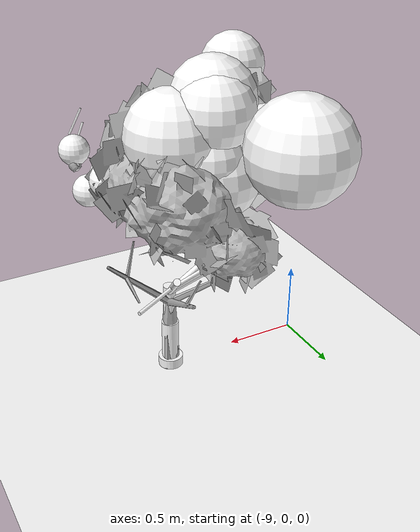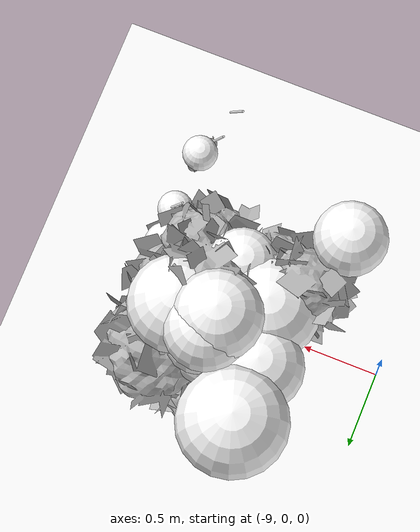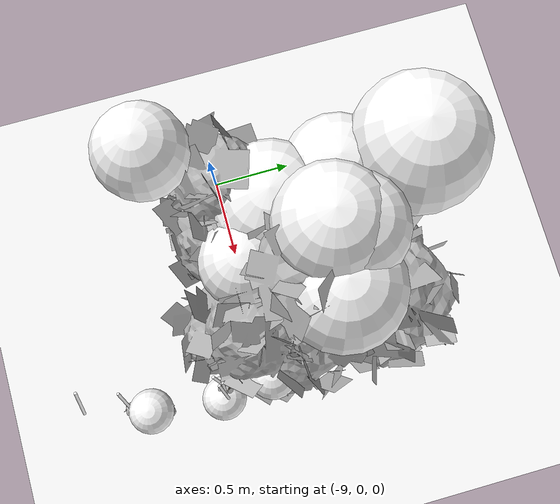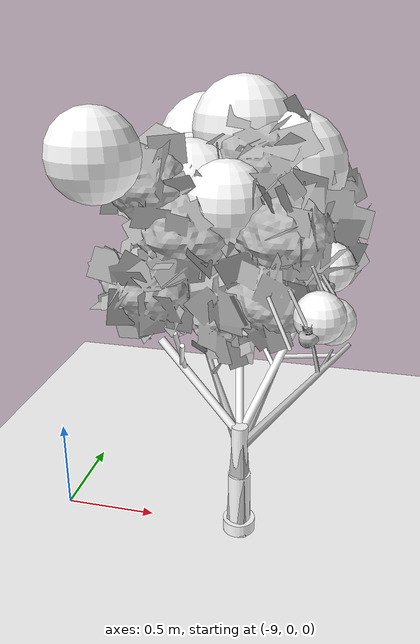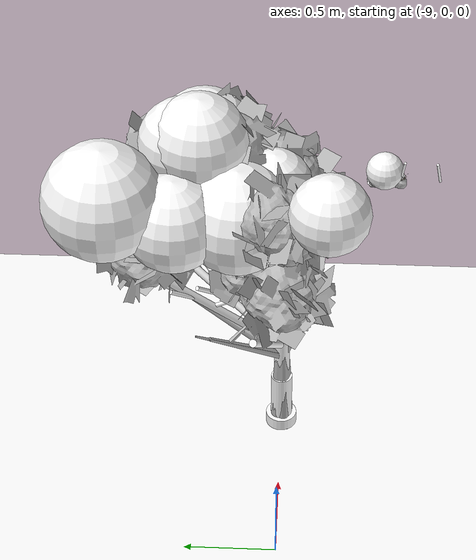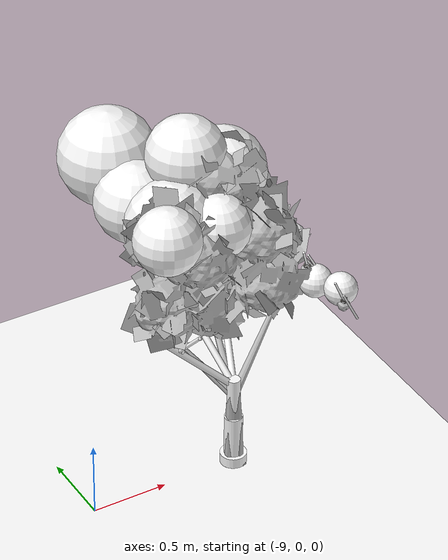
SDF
<sdf version="1.11">
 <world name="peach_orchard">
  <model name="ground">
   <static>true</static>
   <link name="link">
    <visual name="soil">
     <geometry><plane><normal>0 0 1</normal><size>32 22</size></plane></geometry>
     <material>
      <ambient>1 1 1 1</ambient>
      <diffuse>1 1 1 1</diffuse>
      <specular>0.1 0.1 0.1 1</specular>
      <pbr>
       <metal>
        <albedo_map>textures/soil_albedo.png</albedo_map>
        <normal_map type="tangent">textures/soil_normal.png</normal_map>
        <roughness>0.95</roughness>
        <metalness>0</metalness>
       </metal>
      </pbr>
     </material>
    </visual>
    <collision name="c_soil">
     <geometry><plane><normal>0 0 1</normal><size>32 22</size></plane></geometry>
    </collision>
   </link>
  </model>
  <model name="tree_r0_t3">
   <pose>-8 0 0 0 0 0</pose>
   <static>true</static>
   <link name="link">
    <visual name="tree_mesh">
     <pose>0 0 0 0 0 -0.247221</pose>
     <geometry>
      <mesh><uri>model://peach_sim/meshes/peach_tree_b.glb</uri><scale>0.967358 0.967358 0.967358</scale></mesh>
     </geometry>
    </visual>
    <visual name="trunk_0">
     <pose>0 0 0.178396 0 0 0</pose>
     <geometry><cylinder><radius>0.0597704</radius><length>0.356792</length></cylinder></geometry>
     <material>
      <ambient>1 1 1 1</ambient>
      <diffuse>1 1 1 1</diffuse>
      <specular>0.1 0.1 0.1 1</specular>
      <pbr>
       <metal>
        <albedo_map>textures/bark_albedo.png</albedo_map>
        <normal_map type="tangent">textures/bark_normal.png</normal_map>
        <roughness>0.9</roughness>
        <metalness>0</metalness>
       </metal>
      </pbr>
     </material>
    </visual>
    <collision name="c_trunk_0">
     <pose>0 0 0.178396 0 0 0</pose>
     <geometry><cylinder><radius>0.0597704</radius><length>0.356792</length></cylinder></geometry>
    </collision>
    <visual name="trunk_1">
     <pose>0 0 0.502752 0 0 0</pose>
     <geometry><cylinder><radius>0.0430347</radius><length>0.291921</length></cylinder></geometry>
     <material>
      <ambient>1 1 1 1</ambient>
      <diffuse>1 1 1 1</diffuse>
      <specular>0.1 0.1 0.1 1</specular>
      <pbr>
       <metal>
        <albedo_map>textures/bark_albedo.png</albedo_map>
        <normal_map type="tangent">textures/bark_normal.png</normal_map>
        <roughness>0.9</roughness>
        <metalness>0</metalness>
       </metal>
      </pbr>
     </material>
    </visual>
    <collision name="c_trunk_1">
     <pose>0 0 0.502752 0 0 0</pose>
     <geometry><cylinder><radius>0.0430347</radius><length>0.291921</length></cylinder></geometry>
    </collision>
    <visual name="root_flare">
     <pose>0 0 0.035 0 0 0</pose>
     <geometry><cylinder><radius>0.086667</radius><length>0.07</length></cylinder></geometry>
     <material>
      <ambient>1 1 1 1</ambient>
      <diffuse>1 1 1 1</diffuse>
      <specular>0.1 0.1 0.1 1</specular>
      <pbr>
       <metal>
        <albedo_map>textures/bark_albedo.png</albedo_map>
        <normal_map type="tangent">textures/bark_normal.png</normal_map>
        <roughness>0.95</roughness>
        <metalness>0</metalness>
       </metal>
      </pbr>
     </material>
    </visual>
    <visual name="scaffold_0">
     <pose>-0.0714099 0.32601 0.895515 0 0.840746 1.78643</pose>
     <geometry><cylinder><radius>0.022</radius><length>0.895776</length></cylinder></geometry>
     <material>
      <ambient>1 1 1 1</ambient>
      <diffuse>1 1 1 1</diffuse>
      <specular>0.1 0.1 0.1 1</specular>
      <pbr>
       <metal>
        <albedo_map>textures/bark_albedo.png</albedo_map>
        <normal_map type="tangent">textures/bark_normal.png</normal_map>
        <roughness>0.9</roughness>
        <metalness>0</metalness>
       </metal>
      </pbr>
     </material>
    </visual>
    <collision name="c_scaffold_0">
     <pose>-0.0714099 0.32601 0.895515 0 0.840746 1.78643</pose>
     <geometry><cylinder><radius>0.022</radius><length>0.895776</length></cylinder></geometry>
    </collision>
    <visual name="branchlet_0_0">
     <pose>-0.074968 0.278028 0.985074 0 1.2294 -1.48607</pose>
     <geometry><cylinder><radius>0.012</radius><length>0.223457</length></cylinder></geometry>
     <material>
      <ambient>1 1 1 1</ambient>
      <diffuse>1 1 1 1</diffuse>
      <specular>0.1 0.1 0.1 1</specular>
      <pbr>
       <metal>
        <albedo_map>textures/bark_albedo.png</albedo_map>
        <normal_map type="tangent">textures/bark_normal.png</normal_map>
        <roughness>0.9</roughness>
        <metalness>0</metalness>
       </metal>
      </pbr>
     </material>
    </visual>
    <visual name="branchlet_0_1">
     <pose>-0.141953 0.527341 1.07199 0 0.959328 2.09249</pose>
     <geometry><cylinder><radius>0.012</radius><length>0.209406</length></cylinder></geometry>
     <material>
      <ambient>1 1 1 1</ambient>
      <diffuse>1 1 1 1</diffuse>
      <specular>0.1 0.1 0.1 1</specular>
      <pbr>
       <metal>
        <albedo_map>textures/bark_albedo.png</albedo_map>
        <normal_map type="tangent">textures/bark_normal.png</normal_map>
        <roughness>0.9</roughness>
        <metalness>0</metalness>
       </metal>
      </pbr>
     </material>
    </visual>
    <visual name="scaffold_1">
     <pose>0.126136 0.324107 0.850534 0 0.940531 1.19965</pose>
     <geometry><cylinder><radius>0.022</radius><length>0.860996</length></cylinder></geometry>
     <material>
      <ambient>1 1 1 1</ambient>
      <diffuse>1 1 1 1</diffuse>
      <specular>0.1 0.1 0.1 1</specular>
      <pbr>
       <metal>
        <albedo_map>textures/bark_albedo.png</albedo_map>
        <normal_map type="tangent">textures/bark_normal.png</normal_map>
        <roughness>0.9</roughness>
        <metalness>0</metalness>
       </metal>
      </pbr>
     </material>
    </visual>
    <collision name="c_scaffold_1">
     <pose>0.126136 0.324107 0.850534 0 0.940531 1.19965</pose>
     <geometry><cylinder><radius>0.022</radius><length>0.860996</length></cylinder></geometry>
    </collision>
    <visual name="branchlet_1_0">
     <pose>0.0463369 0.392022 0.934786 0 0.868137 2.34231</pose>
     <geometry><cylinder><radius>0.012</radius><length>0.285194</length></cylinder></geometry>
     <material>
      <ambient>1 1 1 1</ambient>
      <diffuse>1 1 1 1</diffuse>
      <specular>0.1 0.1 0.1 1</specular>
      <pbr>
       <metal>
        <albedo_map>textures/bark_albedo.png</albedo_map>
        <normal_map type="tangent">textures/bark_normal.png</normal_map>
        <roughness>0.9</roughness>
        <metalness>0</metalness>
       </metal>
      </pbr>
     </material>
    </visual>
    <visual name="branchlet_1_1">
     <pose>0.291193 0.439442 0.873302 0 1.6542 0.438401</pose>
     <geometry><cylinder><radius>0.012</radius><length>0.32582</length></cylinder></geometry>
     <material>
      <ambient>1 1 1 1</ambient>
      <diffuse>1 1 1 1</diffuse>
      <specular>0.1 0.1 0.1 1</specular>
      <pbr>
       <metal>
        <albedo_map>textures/bark_albedo.png</albedo_map>
        <normal_map type="tangent">textures/bark_normal.png</normal_map>
        <roughness>0.9</roughness>
        <metalness>0</metalness>
       </metal>
      </pbr>
     </material>
    </visual>
    <visual name="scaffold_2">
     <pose>-0.228838 0.0738071 0.812252 0 0.840203 2.8296</pose>
     <geometry><cylinder><radius>0.022</radius><length>0.645684</length></cylinder></geometry>
     <material>
      <ambient>1 1 1 1</ambient>
      <diffuse>1 1 1 1</diffuse>
      <specular>0.1 0.1 0.1 1</specular>
      <pbr>
       <metal>
        <albedo_map>textures/bark_albedo.png</albedo_map>
        <normal_map type="tangent">textures/bark_normal.png</normal_map>
        <roughness>0.9</roughness>
        <metalness>0</metalness>
       </metal>
      </pbr>
     </material>
    </visual>
    <collision name="c_scaffold_2">
     <pose>-0.228838 0.0738071 0.812252 0 0.840203 2.8296</pose>
     <geometry><cylinder><radius>0.022</radius><length>0.645684</length></cylinder></geometry>
    </collision>
    <visual name="branchlet_2_0">
     <pose>-0.308755 0.0238374 1.00972 0 0.745564 -1.25664</pose>
     <geometry><cylinder><radius>0.012</radius><length>0.262289</length></cylinder></geometry>
     <material>
      <ambient>1 1 1 1</ambient>
      <diffuse>1 1 1 1</diffuse>
      <specular>0.1 0.1 0.1 1</specular>
      <pbr>
       <metal>
        <albedo_map>textures/bark_albedo.png</albedo_map>
        <normal_map type="tangent">textures/bark_normal.png</normal_map>
        <roughness>0.9</roughness>
        <metalness>0</metalness>
       </metal>
      </pbr>
     </material>
    </visual>
    <visual name="branchlet_2_1">
     <pose>-0.325364 0.0508039 1.0158 0 0.396969 -1.79275</pose>
     <geometry><cylinder><radius>0.012</radius><length>0.267607</length></cylinder></geometry>
     <material>
      <ambient>1 1 1 1</ambient>
      <diffuse>1 1 1 1</diffuse>
      <specular>0.1 0.1 0.1 1</specular>
      <pbr>
       <metal>
        <albedo_map>textures/bark_albedo.png</albedo_map>
        <normal_map type="tangent">textures/bark_normal.png</normal_map>
        <roughness>0.9</roughness>
        <metalness>0</metalness>
       </metal>
      </pbr>
     </material>
    </visual>
    <visual name="canopy_0">
     <pose>-0.0521394 0.522482 2.05454 0 0 0</pose>
     <geometry><sphere><radius>0.239996</radius></sphere></geometry>
     <material>
      <ambient>1 1 1 1</ambient>
      <diffuse>1 1 1 1</diffuse>
      <specular>0.1 0.1 0.1 1</specular>
      <pbr>
       <metal>
        <albedo_map>textures/leaf_albedo.png</albedo_map>
        <normal_map type="tangent">textures/leaf_normal.png</normal_map>
        <roughness>0.85</roughness>
        <metalness>0</metalness>
       </metal>
      </pbr>
     </material>
    </visual>
    <collision name="c_canopy_0">
     <pose>-0.0521394 0.522482 2.05454 0 0 0</pose>
     <geometry><sphere><radius>0.239996</radius></sphere></geometry>
    </collision>
    <visual name="canopy_1">
     <pose>-0.0854277 0.439385 2.09085 0 0 0</pose>
     <geometry><sphere><radius>0.25731</radius></sphere></geometry>
     <material>
      <ambient>1 1 1 1</ambient>
      <diffuse>1 1 1 1</diffuse>
      <specular>0.1 0.1 0.1 1</specular>
      <pbr>
       <metal>
        <albedo_map>textures/leaf_albedo.png</albedo_map>
        <normal_map type="tangent">textures/leaf_normal.png</normal_map>
        <roughness>0.85</roughness>
        <metalness>0</metalness>
       </metal>
      </pbr>
     </material>
    </visual>
    <collision name="c_canopy_1">
     <pose>-0.0854277 0.439385 2.09085 0 0 0</pose>
     <geometry><sphere><radius>0.25731</radius></sphere></geometry>
    </collision>
    <visual name="canopy_2">
     <pose>-0.0812846 0.0511487 1.80189 0 0 0</pose>
     <geometry><sphere><radius>0.204161</radius></sphere></geometry>
     <material>
      <ambient>1 1 1 1</ambient>
      <diffuse>1 1 1 1</diffuse>
      <specular>0.1 0.1 0.1 1</specular>
      <pbr>
       <metal>
        <albedo_map>textures/leaf_albedo.png</albedo_map>
        <normal_map type="tangent">textures/leaf_normal.png</normal_map>
        <roughness>0.85</roughness>
        <metalness>0</metalness>
       </metal>
      </pbr>
     </material>
    </visual>
    <collision name="c_canopy_2">
     <pose>-0.0812846 0.0511487 1.80189 0 0 0</pose>
     <geometry><sphere><radius>0.204161</radius></sphere></geometry>
    </collision>
    <visual name="canopy_3">
     <pose>-0.372587 0.5628 1.7805 0 0 0</pose>
     <geometry><sphere><radius>0.263478</radius></sphere></geometry>
     <material>
      <ambient>1 1 1 1</ambient>
      <diffuse>1 1 1 1</diffuse>
      <specular>0.1 0.1 0.1 1</specular>
      <pbr>
       <metal>
        <albedo_map>textures/leaf_albedo.png</albedo_map>
        <normal_map type="tangent">textures/leaf_normal.png</normal_map>
        <roughness>0.85</roughness>
        <metalness>0</metalness>
       </metal>
      </pbr>
     </material>
    </visual>
    <visual name="canopy_4">
     <pose>-0.0149876 0.51601 1.77718 0 0 0</pose>
     <geometry><sphere><radius>0.222889</radius></sphere></geometry>
     <material>
      <ambient>1 1 1 1</ambient>
      <diffuse>1 1 1 1</diffuse>
      <specular>0.1 0.1 0.1 1</specular>
      <pbr>
       <metal>
        <albedo_map>textures/leaf_albedo.png</albedo_map>
        <normal_map type="tangent">textures/leaf_normal.png</normal_map>
        <roughness>0.85</roughness>
        <metalness>0</metalness>
       </metal>
      </pbr>
     </material>
    </visual>
    <visual name="canopy_5">
     <pose>-0.320343 0.123571 1.69414 0 0 0</pose>
     <geometry><sphere><radius>0.19506</radius></sphere></geometry>
     <material>
      <ambient>1 1 1 1</ambient>
      <diffuse>1 1 1 1</diffuse>
      <specular>0.1 0.1 0.1 1</specular>
      <pbr>
       <metal>
        <albedo_map>textures/leaf_albedo.png</albedo_map>
        <normal_map type="tangent">textures/leaf_normal.png</normal_map>
        <roughness>0.85</roughness>
        <metalness>0</metalness>
       </metal>
      </pbr>
     </material>
    </visual>
    <visual name="canopy_6">
     <pose>-0.10246 0.298715 1.62442 0 0 0</pose>
     <geometry><sphere><radius>0.18297</radius></sphere></geometry>
     <material>
      <ambient>1 1 1 1</ambient>
      <diffuse>1 1 1 1</diffuse>
      <specular>0.1 0.1 0.1 1</specular>
      <pbr>
       <metal>
        <albedo_map>textures/leaf_albedo.png</albedo_map>
        <normal_map type="tangent">textures/leaf_normal.png</normal_map>
        <roughness>0.85</roughness>
        <metalness>0</metalness>
       </metal>
      </pbr>
     </material>
    </visual>
    <visual name="canopy_7">
     <pose>0.161933 0.425727 1.91274 0 0 0</pose>
     <geometry><sphere><radius>0.280932</radius></sphere></geometry>
     <material>
      <ambient>1 1 1 1</ambient>
      <diffuse>1 1 1 1</diffuse>
      <specular>0.1 0.1 0.1 1</specular>
      <pbr>
       <metal>
        <albedo_map>textures/leaf_albedo.png</albedo_map>
        <normal_map type="tangent">textures/leaf_normal.png</normal_map>
        <roughness>0.85</roughness>
        <metalness>0</metalness>
       </metal>
      </pbr>
     </material>
    </visual>
    <visual name="canopy_8">
     <pose>-0.303597 0.234735 1.76609 0 0 0</pose>
     <geometry><sphere><radius>0.299813</radius></sphere></geometry>
     <material>
      <ambient>1 1 1 1</ambient>
      <diffuse>1 1 1 1</diffuse>
      <specular>0.1 0.1 0.1 1</specular>
      <pbr>
       <metal>
        <albedo_map>textures/leaf_albedo.png</albedo_map>
        <normal_map type="tangent">textures/leaf_normal.png</normal_map>
        <roughness>0.85</roughness>
        <metalness>0</metalness>
       </metal>
      </pbr>
     </material>
    </visual>
    <visual name="canopy_9">
     <pose>-0.365212 0.923447 1.90479 0 0 0</pose>
     <geometry><sphere><radius>0.318709</radius></sphere></geometry>
     <material>
      <ambient>1 1 1 1</ambient>
      <diffuse>1 1 1 1</diffuse>
      <specular>0.1 0.1 0.1 1</specular>
      <pbr>
       <metal>
        <albedo_map>textures/leaf_albedo.png</albedo_map>
        <normal_map type="tangent">textures/leaf_normal.png</normal_map>
        <roughness>0.85</roughness>
        <metalness>0</metalness>
       </metal>
      </pbr>
     </material>
    </visual>
    <visual name="canopy_10">
     <pose>-0.0771612 0.481471 1.65753 0 0 0</pose>
     <geometry><sphere><radius>0.28199</radius></sphere></geometry>
     <material>
      <ambient>1 1 1 1</ambient>
      <diffuse>1 1 1 1</diffuse>
      <specular>0.1 0.1 0.1 1</specular>
      <pbr>
       <metal>
        <albedo_map>textures/leaf_albedo.png</albedo_map>
        <normal_map type="tangent">textures/leaf_normal.png</normal_map>
        <roughness>0.85</roughness>
        <metalness>0</metalness>
       </metal>
      </pbr>
     </material>
    </visual>
    <visual name="canopy_11">
     <pose>-0.601643 -0.239199 2.04859 0 0 0</pose>
     <geometry><sphere><radius>0.210465</radius></sphere></geometry>
     <material>
      <ambient>1 1 1 1</ambient>
      <diffuse>1 1 1 1</diffuse>
      <specular>0.1 0.1 0.1 1</specular>
      <pbr>
       <metal>
        <albedo_map>textures/leaf_albedo.png</albedo_map>
        <normal_map type="tangent">textures/leaf_normal.png</normal_map>
        <roughness>0.85</roughness>
        <metalness>0</metalness>
       </metal>
      </pbr>
     </material>
    </visual>
    <visual name="foliage_0">
     <pose>0.44745 -0.213261 1.37362 0 0 0</pose>
     <geometry><sphere><radius>0.105759</radius></sphere></geometry>
     <material>
      <ambient>1 1 1 1</ambient>
      <diffuse>1 1 1 1</diffuse>
      <specular>0.1 0.1 0.1 1</specular>
      <pbr>
       <metal>
        <albedo_map>textures/leaf_albedo.png</albedo_map>
        <normal_map type="tangent">textures/leaf_normal.png</normal_map>
        <roughness>0.85</roughness>
        <metalness>0</metalness>
       </metal>
      </pbr>
     </material>
    </visual>
    <visual name="foliage_4">
     <pose>0.419705 -0.538777 1.5248 0 0 0</pose>
     <geometry><sphere><radius>0.103953</radius></sphere></geometry>
     <material>
      <ambient>1 1 1 1</ambient>
      <diffuse>1 1 1 1</diffuse>
      <specular>0.1 0.1 0.1 1</specular>
      <pbr>
       <metal>
        <albedo_map>textures/leaf_albedo.png</albedo_map>
        <normal_map type="tangent">textures/leaf_normal.png</normal_map>
        <roughness>0.85</roughness>
        <metalness>0</metalness>
       </metal>
      </pbr>
     </material>
    </visual>
    <visual name="foliage_8">
     <pose>0.405917 0.0375678 1.5341 0 0 0</pose>
     <geometry><sphere><radius>0.119137</radius></sphere></geometry>
     <material>
      <ambient>1 1 1 1</ambient>
      <diffuse>1 1 1 1</diffuse>
      <specular>0.1 0.1 0.1 1</specular>
      <pbr>
       <metal>
        <albedo_map>textures/leaf_albedo.png</albedo_map>
        <normal_map type="tangent">textures/leaf_normal.png</normal_map>
        <roughness>0.85</roughness>
        <metalness>0</metalness>
       </metal>
      </pbr>
     </material>
    </visual>
    <visual name="twig_0">
     <pose>0.439008 -0.193386 1.50181 0 0.549773 -2.8413</pose>
     <geometry><cylinder><radius>0.007</radius><length>0.180828</length></cylinder></geometry>
     <material>
      <ambient>1 1 1 1</ambient>
      <diffuse>1 1 1 1</diffuse>
      <specular>0.1 0.1 0.1 1</specular>
      <pbr>
       <metal>
        <albedo_map>textures/bark_albedo.png</albedo_map>
        <normal_map type="tangent">textures/bark_normal.png</normal_map>
        <roughness>0.9</roughness>
        <metalness>0</metalness>
       </metal>
      </pbr>
     </material>
    </visual>
    <visual name="twig_1">
     <pose>0.437007 -0.194741 1.47414 0 0.617922 3.07378</pose>
     <geometry><cylinder><radius>0.007</radius><length>0.180931</length></cylinder></geometry>
     <material>
      <ambient>1 1 1 1</ambient>
      <diffuse>1 1 1 1</diffuse>
      <specular>0.1 0.1 0.1 1</specular>
      <pbr>
       <metal>
        <albedo_map>textures/bark_albedo.png</albedo_map>
        <normal_map type="tangent">textures/bark_normal.png</normal_map>
        <roughness>0.9</roughness>
        <metalness>0</metalness>
       </metal>
      </pbr>
     </material>
    </visual>
    <visual name="twig_2">
     <pose>0.458465 -0.197293 1.43084 0 0.667459 2.86301</pose>
     <geometry><cylinder><radius>0.007</radius><length>0.133224</length></cylinder></geometry>
     <material>
      <ambient>1 1 1 1</ambient>
      <diffuse>1 1 1 1</diffuse>
      <specular>0.1 0.1 0.1 1</specular>
      <pbr>
       <metal>
        <albedo_map>textures/bark_albedo.png</albedo_map>
        <normal_map type="tangent">textures/bark_normal.png</normal_map>
        <roughness>0.9</roughness>
        <metalness>0</metalness>
       </metal>
      </pbr>
     </material>
    </visual>
    <visual name="twig_3">
     <pose>0.434107 -0.51824 1.52991 0 0.366935 -2.61122</pose>
     <geometry><cylinder><radius>0.007</radius><length>0.128357</length></cylinder></geometry>
     <material>
      <ambient>1 1 1 1</ambient>
      <diffuse>1 1 1 1</diffuse>
      <specular>0.1 0.1 0.1 1</specular>
      <pbr>
       <metal>
        <albedo_map>textures/bark_albedo.png</albedo_map>
        <normal_map type="tangent">textures/bark_normal.png</normal_map>
        <roughness>0.9</roughness>
        <metalness>0</metalness>
       </metal>
      </pbr>
     </material>
    </visual>
    <visual name="twig_4">
     <pose>0.348889 -0.634016 1.58656 0 0.447157 -2.96535</pose>
     <geometry><cylinder><radius>0.007</radius><length>0.176377</length></cylinder></geometry>
     <material>
      <ambient>1 1 1 1</ambient>
      <diffuse>1 1 1 1</diffuse>
      <specular>0.1 0.1 0.1 1</specular>
      <pbr>
       <metal>
        <albedo_map>textures/bark_albedo.png</albedo_map>
        <normal_map type="tangent">textures/bark_normal.png</normal_map>
        <roughness>0.9</roughness>
        <metalness>0</metalness>
       </metal>
      </pbr>
     </material>
    </visual>
    <visual name="twig_5">
     <pose>0.303764 -0.825683 1.61045 0 0.461687 2.85756</pose>
     <geometry><cylinder><radius>0.007</radius><length>0.202192</length></cylinder></geometry>
     <material>
      <ambient>1 1 1 1</ambient>
      <diffuse>1 1 1 1</diffuse>
      <specular>0.1 0.1 0.1 1</specular>
      <pbr>
       <metal>
        <albedo_map>textures/bark_albedo.png</albedo_map>
        <normal_map type="tangent">textures/bark_normal.png</normal_map>
        <roughness>0.9</roughness>
        <metalness>0</metalness>
       </metal>
      </pbr>
     </material>
    </visual>
    <visual name="twig_6">
     <pose>0.377038 -0.203165 1.55248 0 0.429266 -2.53192</pose>
     <geometry><cylinder><radius>0.007</radius><length>0.147432</length></cylinder></geometry>
     <material>
      <ambient>1 1 1 1</ambient>
      <diffuse>1 1 1 1</diffuse>
      <specular>0.1 0.1 0.1 1</specular>
      <pbr>
       <metal>
        <albedo_map>textures/bark_albedo.png</albedo_map>
        <normal_map type="tangent">textures/bark_normal.png</normal_map>
        <roughness>0.9</roughness>
        <metalness>0</metalness>
       </metal>
      </pbr>
     </material>
    </visual>
    <visual name="twig_7">
     <pose>0.376601 -0.0582306 1.57926 0 0.347275 2.56346</pose>
     <geometry><cylinder><radius>0.007</radius><length>0.154272</length></cylinder></geometry>
     <material>
      <ambient>1 1 1 1</ambient>
      <diffuse>1 1 1 1</diffuse>
      <specular>0.1 0.1 0.1 1</specular>
      <pbr>
       <metal>
        <albedo_map>textures/bark_albedo.png</albedo_map>
        <normal_map type="tangent">textures/bark_normal.png</normal_map>
        <roughness>0.9</roughness>
        <metalness>0</metalness>
       </metal>
      </pbr>
     </material>
    </visual>
    <visual name="twig_8">
     <pose>0.318591 0.0419632 1.56294 0 0.637538 3.11332</pose>
     <geometry><cylinder><radius>0.007</radius><length>0.161907</length></cylinder></geometry>
     <material>
      <ambient>1 1 1 1</ambient>
      <diffuse>1 1 1 1</diffuse>
      <specular>0.1 0.1 0.1 1</specular>
      <pbr>
       <metal>
        <albedo_map>textures/bark_albedo.png</albedo_map>
        <normal_map type="tangent">textures/bark_normal.png</normal_map>
        <roughness>0.9</roughness>
        <metalness>0</metalness>
       </metal>
      </pbr>
     </material>
    </visual>
    <visual name="twig_9">
     <pose>0.346366 0.210762 1.58309 0 0.638013 -2.87222</pose>
     <geometry><cylinder><radius>0.007</radius><length>0.162618</length></cylinder></geometry>
     <material>
      <ambient>1 1 1 1</ambient>
      <diffuse>1 1 1 1</diffuse>
      <specular>0.1 0.1 0.1 1</specular>
      <pbr>
       <metal>
        <albedo_map>textures/bark_albedo.png</albedo_map>
        <normal_map type="tangent">textures/bark_normal.png</normal_map>
        <roughness>0.9</roughness>
        <metalness>0</metalness>
       </metal>
      </pbr>
     </material>
    </visual>
    <visual name="twig_10">
     <pose>0.344335 0.474928 1.54053 0 0.651043 2.86531</pose>
     <geometry><cylinder><radius>0.007</radius><length>0.118282</length></cylinder></geometry>
     <material>
      <ambient>1 1 1 1</ambient>
      <diffuse>1 1 1 1</diffuse>
      <specular>0.1 0.1 0.1 1</specular>
      <pbr>
       <metal>
        <albedo_map>textures/bark_albedo.png</albedo_map>
        <normal_map type="tangent">textures/bark_normal.png</normal_map>
        <roughness>0.9</roughness>
        <metalness>0</metalness>
       </metal>
      </pbr>
     </material>
    </visual>
   </link>
  </model>
  <model name="peach_tree_r0_t3_02">
   <pose>-7.51628 -0.213388 1.31774 0 0.244275 0.31933</pose>
   <static>true</static>
   <link name="bag">
    <visual name="bag_mesh">
     <pose>0 0 0.0403235 0 0 0</pose>
     <geometry>
      <mesh><uri>model://peach_sim/meshes/bagged_peach.glb</uri><scale>0.95098 1.13878 0.916443</scale></mesh>
     </geometry>
    </visual>
    <visual name="body">
     <pose>0 0 0.0223235 0 0 0</pose>
     <geometry><ellipsoid><radii>0.0356617 0.0296082 0.0241094</radii></ellipsoid></geometry>
     <material>
      <ambient>1 1 1 1</ambient>
      <diffuse>1 1 1 1</diffuse>
      <specular>0.1 0.1 0.1 1</specular>
      <pbr>
       <metal>
        <albedo_map>textures/paper_bag_albedo.png</albedo_map>
        <normal_map type="tangent">textures/paper_bag_normal.png</normal_map>
        <roughness>0.72</roughness>
        <metalness>0</metalness>
       </metal>
      </pbr>
     </material>
    </visual>
    <visual name="bottom_fold">
     <pose>0 0 0.012 0 0 0.35</pose>
     <geometry><box><size>0.0552757 0.0340495 0.022</size></box></geometry>
     <material>
      <ambient>1 1 1 1</ambient>
      <diffuse>1 1 1 1</diffuse>
      <specular>0.1 0.1 0.1 1</specular>
      <pbr>
       <metal>
        <albedo_map>textures/paper_bag_albedo.png</albedo_map>
        <normal_map type="tangent">textures/paper_bag_normal.png</normal_map>
        <roughness>0.8</roughness>
        <metalness>0</metalness>
       </metal>
      </pbr>
     </material>
    </visual>
    <visual name="fruit">
     <pose>0 0 0.0203398 0 0 0</pose>
     <geometry><sphere><radius>0.0273934</radius></sphere></geometry>
     <material>
      <ambient>1 1 1 1</ambient>
      <diffuse>1 1 1 1</diffuse>
      <specular>0.1 0.1 0.1 1</specular>
      <pbr>
       <metal>
        <albedo_map>textures/fruit_skin_albedo.png</albedo_map>
        <normal_map type="tangent">textures/fruit_skin_normal.png</normal_map>
        <roughness>0.55</roughness>
        <metalness>0</metalness>
       </metal>
      </pbr>
     </material>
    </visual>
    <visual name="neck">
     <pose>0 0 0.053647 0 0 0</pose>
     <geometry><cylinder><radius>0.013</radius><length>0.018</length></cylinder></geometry>
     <material>
      <ambient>1 1 1 1</ambient>
      <diffuse>1 1 1 1</diffuse>
      <specular>0.1 0.1 0.1 1</specular>
      <pbr>
       <metal>
        <albedo_map>textures/paper_bag_albedo.png</albedo_map>
        <normal_map type="tangent">textures/paper_bag_normal.png</normal_map>
        <roughness>0.75</roughness>
        <metalness>0</metalness>
       </metal>
      </pbr>
     </material>
    </visual>
    <visual name="gather">
     <pose>0 0 0.034647 0 0 0</pose>
     <geometry><cylinder><radius>0.019</radius><length>0.02</length></cylinder></geometry>
     <material>
      <ambient>1 1 1 1</ambient>
      <diffuse>1 1 1 1</diffuse>
      <specular>0.1 0.1 0.1 1</specular>
      <pbr>
       <metal>
        <albedo_map>textures/paper_bag_albedo.png</albedo_map>
        <normal_map type="tangent">textures/paper_bag_normal.png</normal_map>
        <roughness>0.8</roughness>
        <metalness>0</metalness>
       </metal>
      </pbr>
     </material>
    </visual>
    <visual name="inner_paper">
     <pose>0 0 0.058647 0 0 0</pose>
     <geometry><cylinder><radius>0.01</radius><length>0.008</length></cylinder></geometry>
     <material>
      <ambient>0.180392 0.14902 0.133333 1</ambient>
      <diffuse>0.180392 0.14902 0.133333 1</diffuse>
      <specular>0.1 0.1 0.1 1</specular>
     </material>
    </visual>
    <visual name="wire_0">
     <pose>0 0 0.048647 0 0 0</pose>
     <geometry><cylinder><radius>0.0205</radius><length>0.0035</length></cylinder></geometry>
     <material>
      <ambient>0.25 0.25 0.25 1</ambient>
      <diffuse>0.25 0.25 0.25 1</diffuse>
      <specular>0.1 0.1 0.1 1</specular>
     </material>
    </visual>
    <visual name="wire_1">
     <pose>0 0 0.055647 0 0 0</pose>
     <geometry><cylinder><radius>0.0205</radius><length>0.0035</length></cylinder></geometry>
     <material>
      <ambient>0.25 0.25 0.25 1</ambient>
      <diffuse>0.25 0.25 0.25 1</diffuse>
      <specular>0.1 0.1 0.1 1</specular>
     </material>
    </visual>
    <visual name="wire_tail">
     <pose>0.01 0 0.056647 0 0.521618 0</pose>
     <geometry><cylinder><radius>0.0012</radius><length>0.026</length></cylinder></geometry>
     <material>
      <ambient>0.25 0.25 0.25 1</ambient>
      <diffuse>0.25 0.25 0.25 1</diffuse>
      <specular>0.1 0.1 0.1 1</specular>
     </material>
    </visual>
    <collision name="c_body">
     <pose>0 0 0.0223235 0 0 0</pose>
     <geometry><cylinder><radius>0.0356617</radius><length>0.044647</length></cylinder></geometry>
    </collision>
   </link>
  </model>
  <model name="peach_tree_r0_t3_03">
   <pose>-7.57305 -0.466838 1.41347 0 0.704683 -0.973794</pose>
   <static>true</static>
   <link name="bag">
    <visual name="bag_mesh">
     <pose>0 0 0.0461031 0 0 -0</pose>
     <geometry>
      <mesh><uri>model://peach_sim/meshes/bagged_peach.glb</uri><scale>0.941461 1.07677 1.0478</scale></mesh>
     </geometry>
    </visual>
    <visual name="body">
     <pose>0 0 0.0281031 0 0 0</pose>
     <geometry><ellipsoid><radii>0.0353048 0.0279961 0.0303513</radii></ellipsoid></geometry>
     <material>
      <ambient>1 1 1 1</ambient>
      <diffuse>1 1 1 1</diffuse>
      <specular>0.1 0.1 0.1 1</specular>
      <pbr>
       <metal>
        <albedo_map>textures/paper_bag_albedo.png</albedo_map>
        <normal_map type="tangent">textures/paper_bag_normal.png</normal_map>
        <roughness>0.72</roughness>
        <metalness>0</metalness>
       </metal>
      </pbr>
     </material>
    </visual>
    <visual name="bottom_fold">
     <pose>0 0 0.012 0 0 0.35</pose>
     <geometry><box><size>0.0547224 0.0321955 0.022</size></box></geometry>
     <material>
      <ambient>1 1 1 1</ambient>
      <diffuse>1 1 1 1</diffuse>
      <specular>0.1 0.1 0.1 1</specular>
      <pbr>
       <metal>
        <albedo_map>textures/paper_bag_albedo.png</albedo_map>
        <normal_map type="tangent">textures/paper_bag_normal.png</normal_map>
        <roughness>0.8</roughness>
        <metalness>0</metalness>
       </metal>
      </pbr>
     </material>
    </visual>
    <visual name="fruit">
     <pose>0 0 0.0172945 0 0 0</pose>
     <geometry><sphere><radius>0.0242263</radius></sphere></geometry>
     <material>
      <ambient>1 1 1 1</ambient>
      <diffuse>1 1 1 1</diffuse>
      <specular>0.1 0.1 0.1 1</specular>
      <pbr>
       <metal>
        <albedo_map>textures/fruit_skin_albedo.png</albedo_map>
        <normal_map type="tangent">textures/fruit_skin_normal.png</normal_map>
        <roughness>0.55</roughness>
        <metalness>0</metalness>
       </metal>
      </pbr>
     </material>
    </visual>
    <visual name="neck">
     <pose>0 0 0.0652061 0 0 0</pose>
     <geometry><cylinder><radius>0.013</radius><length>0.018</length></cylinder></geometry>
     <material>
      <ambient>1 1 1 1</ambient>
      <diffuse>1 1 1 1</diffuse>
      <specular>0.1 0.1 0.1 1</specular>
      <pbr>
       <metal>
        <albedo_map>textures/paper_bag_albedo.png</albedo_map>
        <normal_map type="tangent">textures/paper_bag_normal.png</normal_map>
        <roughness>0.75</roughness>
        <metalness>0</metalness>
       </metal>
      </pbr>
     </material>
    </visual>
    <visual name="gather">
     <pose>0 0 0.0462061 0 0 0</pose>
     <geometry><cylinder><radius>0.019</radius><length>0.02</length></cylinder></geometry>
     <material>
      <ambient>1 1 1 1</ambient>
      <diffuse>1 1 1 1</diffuse>
      <specular>0.1 0.1 0.1 1</specular>
      <pbr>
       <metal>
        <albedo_map>textures/paper_bag_albedo.png</albedo_map>
        <normal_map type="tangent">textures/paper_bag_normal.png</normal_map>
        <roughness>0.8</roughness>
        <metalness>0</metalness>
       </metal>
      </pbr>
     </material>
    </visual>
    <visual name="inner_paper">
     <pose>0 0 0.0702061 0 0 0</pose>
     <geometry><cylinder><radius>0.01</radius><length>0.008</length></cylinder></geometry>
     <material>
      <ambient>0.180392 0.14902 0.133333 1</ambient>
      <diffuse>0.180392 0.14902 0.133333 1</diffuse>
      <specular>0.1 0.1 0.1 1</specular>
     </material>
    </visual>
    <visual name="wire_0">
     <pose>0 0 0.0602061 0 0 0</pose>
     <geometry><cylinder><radius>0.0205</radius><length>0.0035</length></cylinder></geometry>
     <material>
      <ambient>0.25 0.25 0.25 1</ambient>
      <diffuse>0.25 0.25 0.25 1</diffuse>
      <specular>0.1 0.1 0.1 1</specular>
     </material>
    </visual>
    <visual name="wire_1">
     <pose>0 0 0.0672061 0 0 0</pose>
     <geometry><cylinder><radius>0.0205</radius><length>0.0035</length></cylinder></geometry>
     <material>
      <ambient>0.25 0.25 0.25 1</ambient>
      <diffuse>0.25 0.25 0.25 1</diffuse>
      <specular>0.1 0.1 0.1 1</specular>
     </material>
    </visual>
    <visual name="wire_tail">
     <pose>0.01 0 0.0682061 0 0.521618 0</pose>
     <geometry><cylinder><radius>0.0012</radius><length>0.026</length></cylinder></geometry>
     <material>
      <ambient>0.25 0.25 0.25 1</ambient>
      <diffuse>0.25 0.25 0.25 1</diffuse>
      <specular>0.1 0.1 0.1 1</specular>
     </material>
    </visual>
    <collision name="c_body">
     <pose>0 0 0.0281031 0 0 0</pose>
     <geometry><cylinder><radius>0.0353048</radius><length>0.0562061</length></cylinder></geometry>
    </collision>
   </link>
  </model>
  <model name="peach_tree_r0_t3_04">
   <pose>-7.60942 -0.610273 1.44671 0 0.283135 -1.8094</pose>
   <static>true</static>
   <link name="bag">
    <visual name="bag_mesh">
     <pose>0 0 0.0404191 0 0 -0</pose>
     <geometry>
      <mesh><uri>model://peach_sim/meshes/bagged_peach.glb</uri><scale>1.04429 1.13721 0.918617</scale></mesh>
     </geometry>
    </visual>
    <visual name="body">
     <pose>0 0 0.0224191 0 0 0</pose>
     <geometry><ellipsoid><radii>0.0391611 0.0295673 0.0242127</radii></ellipsoid></geometry>
     <material>
      <ambient>1 1 1 1</ambient>
      <diffuse>1 1 1 1</diffuse>
      <specular>0.1 0.1 0.1 1</specular>
      <pbr>
       <metal>
        <albedo_map>textures/paper_bag_albedo.png</albedo_map>
        <normal_map type="tangent">textures/paper_bag_normal.png</normal_map>
        <roughness>0.72</roughness>
        <metalness>0</metalness>
       </metal>
      </pbr>
     </material>
    </visual>
    <visual name="bottom_fold">
     <pose>0 0 0.012 0 0 0.35</pose>
     <geometry><box><size>0.0606996 0.0340024 0.022</size></box></geometry>
     <material>
      <ambient>1 1 1 1</ambient>
      <diffuse>1 1 1 1</diffuse>
      <specular>0.1 0.1 0.1 1</specular>
      <pbr>
       <metal>
        <albedo_map>textures/paper_bag_albedo.png</albedo_map>
        <normal_map type="tangent">textures/paper_bag_normal.png</normal_map>
        <roughness>0.8</roughness>
        <metalness>0</metalness>
       </metal>
      </pbr>
     </material>
    </visual>
    <visual name="fruit">
     <pose>0 0 0.0194825 0 0 0</pose>
     <geometry><sphere><radius>0.0265018</radius></sphere></geometry>
     <material>
      <ambient>1 1 1 1</ambient>
      <diffuse>1 1 1 1</diffuse>
      <specular>0.1 0.1 0.1 1</specular>
      <pbr>
       <metal>
        <albedo_map>textures/fruit_skin_albedo.png</albedo_map>
        <normal_map type="tangent">textures/fruit_skin_normal.png</normal_map>
        <roughness>0.55</roughness>
        <metalness>0</metalness>
       </metal>
      </pbr>
     </material>
    </visual>
    <visual name="neck">
     <pose>0 0 0.0538383 0 0 0</pose>
     <geometry><cylinder><radius>0.013</radius><length>0.018</length></cylinder></geometry>
     <material>
      <ambient>1 1 1 1</ambient>
      <diffuse>1 1 1 1</diffuse>
      <specular>0.1 0.1 0.1 1</specular>
      <pbr>
       <metal>
        <albedo_map>textures/paper_bag_albedo.png</albedo_map>
        <normal_map type="tangent">textures/paper_bag_normal.png</normal_map>
        <roughness>0.75</roughness>
        <metalness>0</metalness>
       </metal>
      </pbr>
     </material>
    </visual>
    <visual name="gather">
     <pose>0 0 0.0348383 0 0 0</pose>
     <geometry><cylinder><radius>0.019</radius><length>0.02</length></cylinder></geometry>
     <material>
      <ambient>1 1 1 1</ambient>
      <diffuse>1 1 1 1</diffuse>
      <specular>0.1 0.1 0.1 1</specular>
      <pbr>
       <metal>
        <albedo_map>textures/paper_bag_albedo.png</albedo_map>
        <normal_map type="tangent">textures/paper_bag_normal.png</normal_map>
        <roughness>0.8</roughness>
        <metalness>0</metalness>
       </metal>
      </pbr>
     </material>
    </visual>
    <visual name="inner_paper">
     <pose>0 0 0.0588383 0 0 0</pose>
     <geometry><cylinder><radius>0.01</radius><length>0.008</length></cylinder></geometry>
     <material>
      <ambient>0.180392 0.14902 0.133333 1</ambient>
      <diffuse>0.180392 0.14902 0.133333 1</diffuse>
      <specular>0.1 0.1 0.1 1</specular>
     </material>
    </visual>
    <visual name="wire_0">
     <pose>0 0 0.0488383 0 0 0</pose>
     <geometry><cylinder><radius>0.0205</radius><length>0.0035</length></cylinder></geometry>
     <material>
      <ambient>0.25 0.25 0.25 1</ambient>
      <diffuse>0.25 0.25 0.25 1</diffuse>
      <specular>0.1 0.1 0.1 1</specular>
     </material>
    </visual>
    <visual name="wire_1">
     <pose>0 0 0.0558383 0 0 0</pose>
     <geometry><cylinder><radius>0.0205</radius><length>0.0035</length></cylinder></geometry>
     <material>
      <ambient>0.25 0.25 0.25 1</ambient>
      <diffuse>0.25 0.25 0.25 1</diffuse>
      <specular>0.1 0.1 0.1 1</specular>
     </material>
    </visual>
    <visual name="wire_tail">
     <pose>0.01 0 0.0568383 0 0.521618 0</pose>
     <geometry><cylinder><radius>0.0012</radius><length>0.026</length></cylinder></geometry>
     <material>
      <ambient>0.25 0.25 0.25 1</ambient>
      <diffuse>0.25 0.25 0.25 1</diffuse>
      <specular>0.1 0.1 0.1 1</specular>
     </material>
    </visual>
    <collision name="c_body">
     <pose>0 0 0.0224191 0 0 0</pose>
     <geometry><cylinder><radius>0.0391611</radius><length>0.0448383</length></cylinder></geometry>
    </collision>
   </link>
  </model>
  <model name="peach_tree_r0_t3_06">
   <pose>-7.59794 -0.185741 1.427 0 0.00334625 0.830136</pose>
   <static>true</static>
   <link name="bag">
    <visual name="bag_mesh">
     <pose>0 0 0.0382236 0 0 0</pose>
     <geometry>
      <mesh><uri>model://peach_sim/meshes/bagged_peach.glb</uri><scale>0.953196 1.05251 0.868718</scale></mesh>
     </geometry>
    </visual>
    <visual name="body">
     <pose>0 0 0.0202236 0 0 0</pose>
     <geometry><ellipsoid><radii>0.0357448 0.0273652 0.0218415</radii></ellipsoid></geometry>
     <material>
      <ambient>1 1 1 1</ambient>
      <diffuse>1 1 1 1</diffuse>
      <specular>0.1 0.1 0.1 1</specular>
      <pbr>
       <metal>
        <albedo_map>textures/paper_bag_albedo.png</albedo_map>
        <normal_map type="tangent">textures/paper_bag_normal.png</normal_map>
        <roughness>0.72</roughness>
        <metalness>0</metalness>
       </metal>
      </pbr>
     </material>
    </visual>
    <visual name="bottom_fold">
     <pose>0 0 0.012 0 0 0.35</pose>
     <geometry><box><size>0.0554045 0.0314699 0.022</size></box></geometry>
     <material>
      <ambient>1 1 1 1</ambient>
      <diffuse>1 1 1 1</diffuse>
      <specular>0.1 0.1 0.1 1</specular>
      <pbr>
       <metal>
        <albedo_map>textures/paper_bag_albedo.png</albedo_map>
        <normal_map type="tangent">textures/paper_bag_normal.png</normal_map>
        <roughness>0.8</roughness>
        <metalness>0</metalness>
       </metal>
      </pbr>
     </material>
    </visual>
    <visual name="fruit">
     <pose>0 0 0.0189488 0 0 0</pose>
     <geometry><sphere><radius>0.0259468</radius></sphere></geometry>
     <material>
      <ambient>1 1 1 1</ambient>
      <diffuse>1 1 1 1</diffuse>
      <specular>0.1 0.1 0.1 1</specular>
      <pbr>
       <metal>
        <albedo_map>textures/fruit_skin_albedo.png</albedo_map>
        <normal_map type="tangent">textures/fruit_skin_normal.png</normal_map>
        <roughness>0.55</roughness>
        <metalness>0</metalness>
       </metal>
      </pbr>
     </material>
    </visual>
    <visual name="neck">
     <pose>0 0 0.0494472 0 0 0</pose>
     <geometry><cylinder><radius>0.013</radius><length>0.018</length></cylinder></geometry>
     <material>
      <ambient>1 1 1 1</ambient>
      <diffuse>1 1 1 1</diffuse>
      <specular>0.1 0.1 0.1 1</specular>
      <pbr>
       <metal>
        <albedo_map>textures/paper_bag_albedo.png</albedo_map>
        <normal_map type="tangent">textures/paper_bag_normal.png</normal_map>
        <roughness>0.75</roughness>
        <metalness>0</metalness>
       </metal>
      </pbr>
     </material>
    </visual>
    <visual name="gather">
     <pose>0 0 0.0304472 0 0 0</pose>
     <geometry><cylinder><radius>0.019</radius><length>0.02</length></cylinder></geometry>
     <material>
      <ambient>1 1 1 1</ambient>
      <diffuse>1 1 1 1</diffuse>
      <specular>0.1 0.1 0.1 1</specular>
      <pbr>
       <metal>
        <albedo_map>textures/paper_bag_albedo.png</albedo_map>
        <normal_map type="tangent">textures/paper_bag_normal.png</normal_map>
        <roughness>0.8</roughness>
        <metalness>0</metalness>
       </metal>
      </pbr>
     </material>
    </visual>
    <visual name="inner_paper">
     <pose>0 0 0.0544472 0 0 0</pose>
     <geometry><cylinder><radius>0.01</radius><length>0.008</length></cylinder></geometry>
     <material>
      <ambient>0.180392 0.14902 0.133333 1</ambient>
      <diffuse>0.180392 0.14902 0.133333 1</diffuse>
      <specular>0.1 0.1 0.1 1</specular>
     </material>
    </visual>
    <visual name="wire_0">
     <pose>0 0 0.0444472 0 0 0</pose>
     <geometry><cylinder><radius>0.0205</radius><length>0.0035</length></cylinder></geometry>
     <material>
      <ambient>0.25 0.25 0.25 1</ambient>
      <diffuse>0.25 0.25 0.25 1</diffuse>
      <specular>0.1 0.1 0.1 1</specular>
     </material>
    </visual>
    <visual name="wire_1">
     <pose>0 0 0.0514472 0 0 0</pose>
     <geometry><cylinder><radius>0.0205</radius><length>0.0035</length></cylinder></geometry>
     <material>
      <ambient>0.25 0.25 0.25 1</ambient>
      <diffuse>0.25 0.25 0.25 1</diffuse>
      <specular>0.1 0.1 0.1 1</specular>
     </material>
    </visual>
    <visual name="wire_tail">
     <pose>0.01 0 0.0524472 0 0.521618 0</pose>
     <geometry><cylinder><radius>0.0012</radius><length>0.026</length></cylinder></geometry>
     <material>
      <ambient>0.25 0.25 0.25 1</ambient>
      <diffuse>0.25 0.25 0.25 1</diffuse>
      <specular>0.1 0.1 0.1 1</specular>
     </material>
    </visual>
    <collision name="c_body">
     <pose>0 0 0.0202236 0 0 0</pose>
     <geometry><cylinder><radius>0.0357448</radius><length>0.0404472</length></cylinder></geometry>
    </collision>
   </link>
  </model>
  <model name="peach_tree_r0_t3_07">
   <pose>-7.59606 -0.0736348 1.44534 0 0.088615 2.94627</pose>
   <static>true</static>
   <link name="bag">
    <visual name="bag_mesh">
     <pose>0 0 0.0398124 0 0 0</pose>
     <geometry>
      <mesh><uri>model://peach_sim/meshes/bagged_peach.glb</uri><scale>1.03499 1.14953 0.904827</scale></mesh>
     </geometry>
    </visual>
    <visual name="body">
     <pose>0 0 0.0218124 0 0 0</pose>
     <geometry><ellipsoid><radii>0.0388122 0.0298878 0.0235574</radii></ellipsoid></geometry>
     <material>
      <ambient>1 1 1 1</ambient>
      <diffuse>1 1 1 1</diffuse>
      <specular>0.1 0.1 0.1 1</specular>
      <pbr>
       <metal>
        <albedo_map>textures/paper_bag_albedo.png</albedo_map>
        <normal_map type="tangent">textures/paper_bag_normal.png</normal_map>
        <roughness>0.72</roughness>
        <metalness>0</metalness>
       </metal>
      </pbr>
     </material>
    </visual>
    <visual name="bottom_fold">
     <pose>0 0 0.012 0 0 0.35</pose>
     <geometry><box><size>0.0601589 0.034371 0.022</size></box></geometry>
     <material>
      <ambient>1 1 1 1</ambient>
      <diffuse>1 1 1 1</diffuse>
      <specular>0.1 0.1 0.1 1</specular>
      <pbr>
       <metal>
        <albedo_map>textures/paper_bag_albedo.png</albedo_map>
        <normal_map type="tangent">textures/paper_bag_normal.png</normal_map>
        <roughness>0.8</roughness>
        <metalness>0</metalness>
       </metal>
      </pbr>
     </material>
    </visual>
    <visual name="fruit">
     <pose>0 0 0.0171916 0 0 0</pose>
     <geometry><sphere><radius>0.0241193</radius></sphere></geometry>
     <material>
      <ambient>1 1 1 1</ambient>
      <diffuse>1 1 1 1</diffuse>
      <specular>0.1 0.1 0.1 1</specular>
      <pbr>
       <metal>
        <albedo_map>textures/fruit_skin_albedo.png</albedo_map>
        <normal_map type="tangent">textures/fruit_skin_normal.png</normal_map>
        <roughness>0.55</roughness>
        <metalness>0</metalness>
       </metal>
      </pbr>
     </material>
    </visual>
    <visual name="neck">
     <pose>0 0 0.0526248 0 0 0</pose>
     <geometry><cylinder><radius>0.013</radius><length>0.018</length></cylinder></geometry>
     <material>
      <ambient>1 1 1 1</ambient>
      <diffuse>1 1 1 1</diffuse>
      <specular>0.1 0.1 0.1 1</specular>
      <pbr>
       <metal>
        <albedo_map>textures/paper_bag_albedo.png</albedo_map>
        <normal_map type="tangent">textures/paper_bag_normal.png</normal_map>
        <roughness>0.75</roughness>
        <metalness>0</metalness>
       </metal>
      </pbr>
     </material>
    </visual>
    <visual name="gather">
     <pose>0 0 0.0336248 0 0 0</pose>
     <geometry><cylinder><radius>0.019</radius><length>0.02</length></cylinder></geometry>
     <material>
      <ambient>1 1 1 1</ambient>
      <diffuse>1 1 1 1</diffuse>
      <specular>0.1 0.1 0.1 1</specular>
      <pbr>
       <metal>
        <albedo_map>textures/paper_bag_albedo.png</albedo_map>
        <normal_map type="tangent">textures/paper_bag_normal.png</normal_map>
        <roughness>0.8</roughness>
        <metalness>0</metalness>
       </metal>
      </pbr>
     </material>
    </visual>
    <visual name="inner_paper">
     <pose>0 0 0.0576248 0 0 0</pose>
     <geometry><cylinder><radius>0.01</radius><length>0.008</length></cylinder></geometry>
     <material>
      <ambient>0.180392 0.14902 0.133333 1</ambient>
      <diffuse>0.180392 0.14902 0.133333 1</diffuse>
      <specular>0.1 0.1 0.1 1</specular>
     </material>
    </visual>
    <visual name="wire_0">
     <pose>0 0 0.0476248 0 0 0</pose>
     <geometry><cylinder><radius>0.0205</radius><length>0.0035</length></cylinder></geometry>
     <material>
      <ambient>0.25 0.25 0.25 1</ambient>
      <diffuse>0.25 0.25 0.25 1</diffuse>
      <specular>0.1 0.1 0.1 1</specular>
     </material>
    </visual>
    <visual name="wire_1">
     <pose>0 0 0.0546248 0 0 0</pose>
     <geometry><cylinder><radius>0.0205</radius><length>0.0035</length></cylinder></geometry>
     <material>
      <ambient>0.25 0.25 0.25 1</ambient>
      <diffuse>0.25 0.25 0.25 1</diffuse>
      <specular>0.1 0.1 0.1 1</specular>
     </material>
    </visual>
    <visual name="wire_tail">
     <pose>0.01 0 0.0556248 0 0.521618 0</pose>
     <geometry><cylinder><radius>0.0012</radius><length>0.026</length></cylinder></geometry>
     <material>
      <ambient>0.25 0.25 0.25 1</ambient>
      <diffuse>0.25 0.25 0.25 1</diffuse>
      <specular>0.1 0.1 0.1 1</specular>
     </material>
    </visual>
    <collision name="c_body">
     <pose>0 0 0.0218124 0 0 0</pose>
     <geometry><cylinder><radius>0.0388122</radius><length>0.0436248</length></cylinder></geometry>
    </collision>
   </link>
  </model>
 </world>
</sdf>
